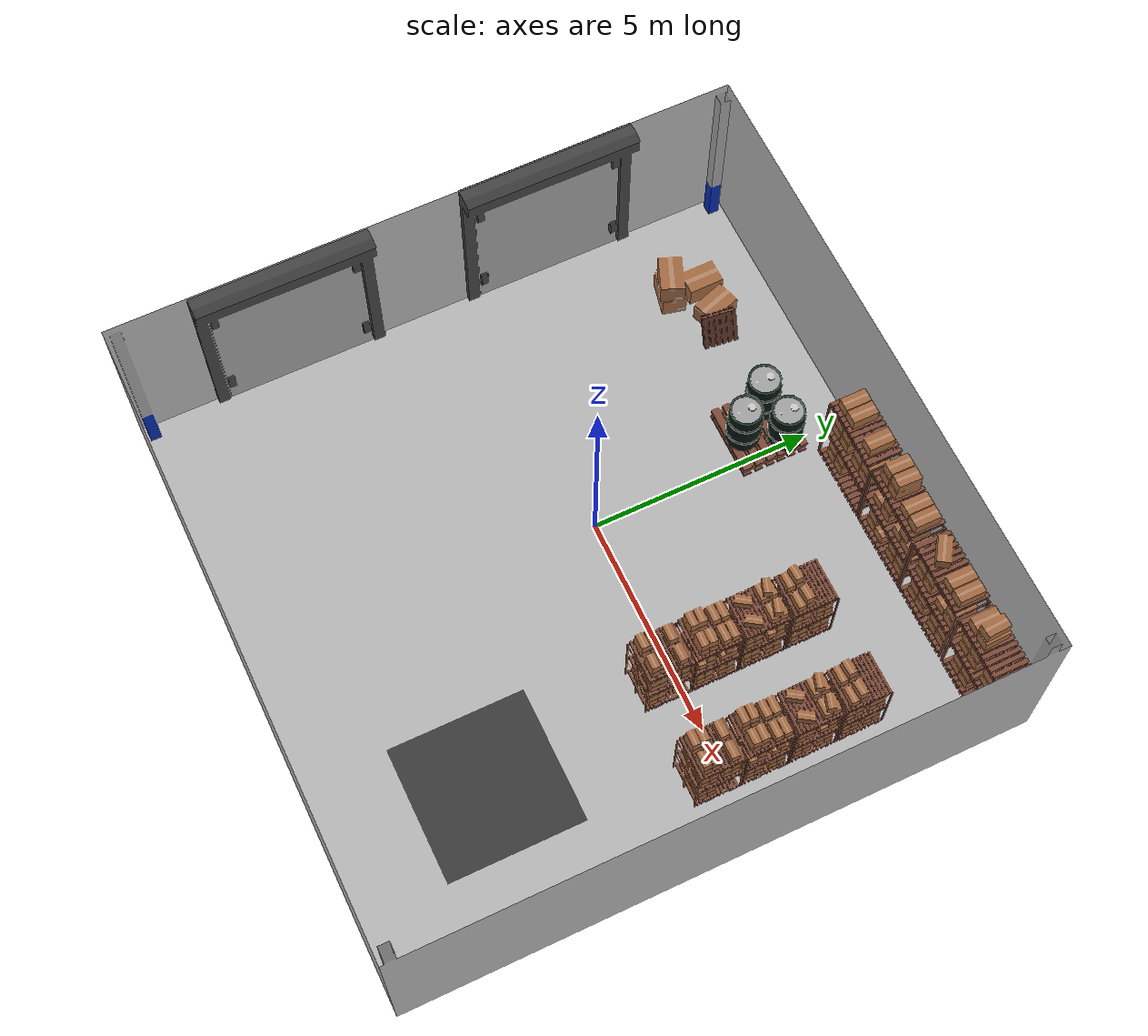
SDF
<?xml version='1.0'?>
<sdf version='1.6'>
  <model name='Rod'>
    <link name='link'>
      <inertial>
        <mass>1</mass>
        <inertia>
          <ixx>0.166667</ixx>
          <ixy>0</ixy>
          <ixz>0</ixz>
          <iyy>0.166667</iyy>
          <iyz>0</iyz>
          <izz>0.166667</izz>
        </inertia>
        <pose frame=''>0 0 0 0 -0 0</pose>
      </inertial>
      <self_collide>0</self_collide>
      <enable_wind>0</enable_wind>
      <kinematic>0</kinematic>
      <pose frame=''>0 0 0 0 -0 0</pose>
      <gravity>1</gravity>
      <visual name='visual'>
        <geometry>
          <box>
            <size>0.05 0.05 0.05</size>
          </box>
        </geometry>
        <material>
          <script>
            <name>Gazebo/Grey</name>
            <uri>file://media/materials/scripts/gazebo.material</uri>
          </script>
          <shader type='vertex'>
            <normal_map>__default__</normal_map>
          </shader>
          <ambient>1 0.3 0.3 1</ambient>
          <diffuse>1 0.7 0.7 1</diffuse>
          <specular>1 0.01 0.01 1</specular>
          <emissive>0 0 0 1</emissive>
        </material>
        <pose frame=''>0 0 0 0 -0 0</pose>
        <transparency>0</transparency>
        <cast_shadows>1</cast_shadows>
      </visual>
      <collision name='collision'>
        <laser_retro>0</laser_retro>
        <max_contacts>10</max_contacts>
        <pose frame=''>0 0 0 0 -0 0</pose>
        <geometry>
          <box>
            <size>1 1 1</size>
          </box>
        </geometry>
        <surface>
          <friction>
            <ode>
              <mu>1</mu>
              <mu2>1</mu2>
              <fdir1>0 0 0</fdir1>
              <slip1>0</slip1>
              <slip2>0</slip2>
            </ode>
            <torsional>
              <coefficient>1</coefficient>
              <patch_radius>0</patch_radius>
              <surface_radius>0</surface_radius>
              <use_patch_radius>1</use_patch_radius>
              <ode>
                <slip>0</slip>
              </ode>
            </torsional>
          </friction>
          <bounce>
            <restitution_coefficient>0</restitution_coefficient>
            <threshold>1e+06</threshold>
          </bounce>
          <contact>
            <collide_without_contact>0</collide_without_contact>
            <collide_without_contact_bitmask>1</collide_without_contact_bitmask>
            <collide_bitmask>1</collide_bitmask>
            <ode>
              <soft_cfm>0</soft_cfm>
              <soft_erp>0.2</soft_erp>
              <kp>1e+13</kp>
              <kd>1</kd>
              <max_vel>0.01</max_vel>
              <min_depth>0</min_depth>
            </ode>
            <bullet>
              <split_impulse>1</split_impulse>
              <split_impulse_penetration_threshold>-0.01</split_impulse_penetration_threshold>
              <soft_cfm>0</soft_cfm>
              <soft_erp>0.2</soft_erp>
              <kp>1e+13</kp>
              <kd>1</kd>
            </bullet>
          </contact>
        </surface>
      </collision>
    </link>
    <model name='fetchit_warehouse'>
      <static>1</static>
      <link name='link'>
        <visual name='visual'>
          <geometry>
            <mesh>
              <uri>model://fetchit_warehouse/meshes/fetchit_env_version6.dae</uri>
              <scale>1 1 1</scale>
            </mesh>
          </geometry>
        </visual>
        <velocity_decay>
          <linear>0</linear>
          <angular>0</angular>
        </velocity_decay>
        <self_collide>0</self_collide>
        <kinematic>0</kinematic>
        <gravity>1</gravity>
      </link>
      <pose frame=''>0.702276 -0.919669 0 0 -0 0</pose>
    </model>
    <static>0</static>
    <allow_auto_disable>1</allow_auto_disable>
  </model>
</sdf>
